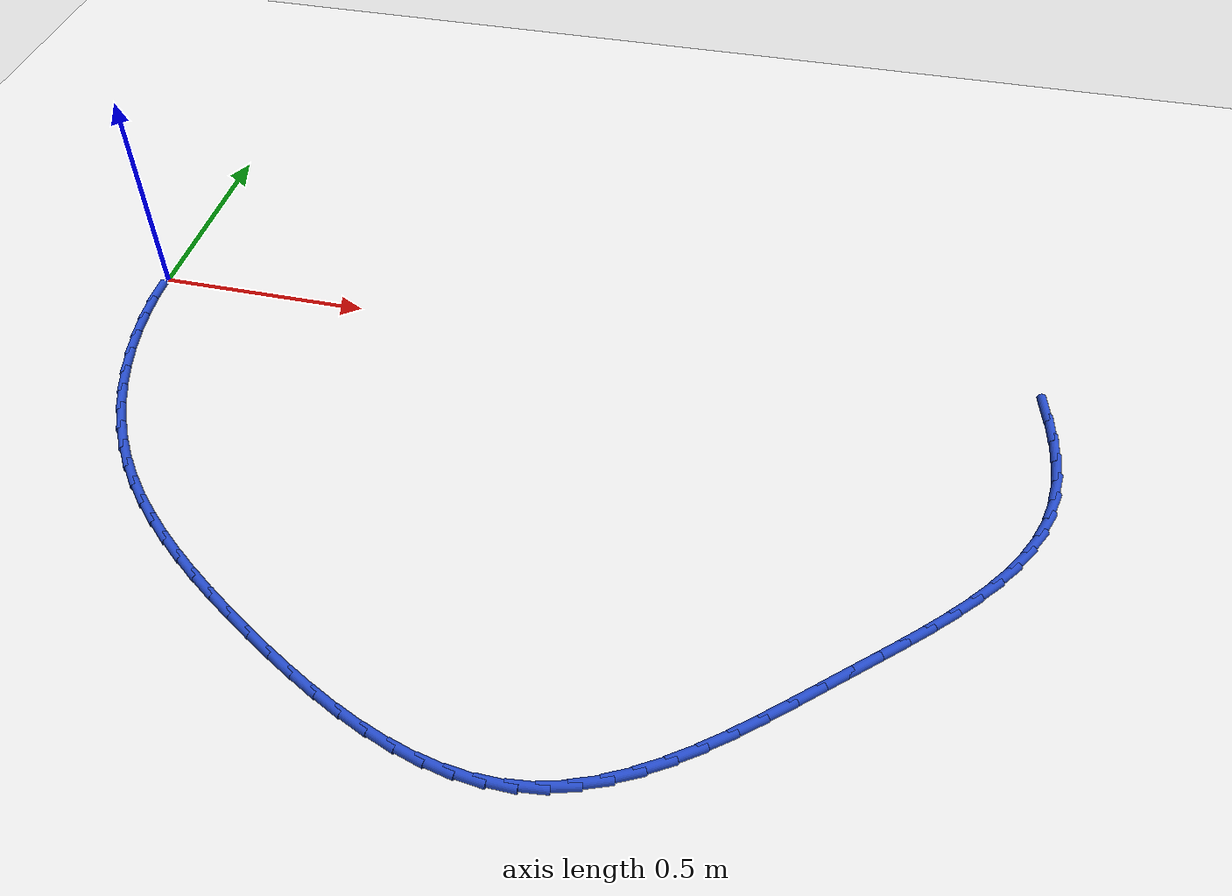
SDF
<sdf version="1.6">
 <world name="default">
  <model name="ground_plane">
   <static>1</static>
   <link name="link">
    <collision name="collision">
     <geometry><plane><normal>0 0 1</normal><size>100 100</size></plane></geometry>
     <surface><friction><ode><mu>100</mu><mu2>50</mu2></ode></friction></surface>
    </collision>
    <visual name="visual">
     <cast_shadows>0</cast_shadows>
     <geometry><plane><normal>0 0 1</normal><size>100 100</size></plane></geometry>
     <material>
      <script><uri>file://media/materials/scripts/gazebo.material</uri><name>Gazebo/WhiteGlow</name></script>
     </material>
    </visual>
   </link>
  </model>
  <model name="line">
   <link name="link_54">
    <pose>2.0862163492933608 -0.0034234239656072175 0.01 0 1.57 -1.4145855489516896</pose>
    <collision name="collision">
     <geometry><cylinder><radius>0.01</radius><length>0.08</length></cylinder></geometry>
    </collision>
    <visual name="visual">
     <material>
      <script><name>Gazebo/Blue</name><uri>file://media/materials/scripts/gazebo.material</uri></script>
     </material>
     <geometry><cylinder><radius>0.01</radius><length>0.08</length></cylinder></geometry>
    </visual>
   </link>
   <link name="link_55">
    <pose>2.095542316240016 -0.06263820138660511 0.01 0 1.57 -1.4789015656875089</pose>
    <collision name="collision">
     <geometry><cylinder><radius>0.01</radius><length>0.08</length></cylinder></geometry>
    </collision>
    <visual name="visual">
     <material>
      <script><name>Gazebo/Blue</name><uri>file://media/materials/scripts/gazebo.material</uri></script>
     </material>
     <geometry><cylinder><radius>0.01</radius><length>0.08</length></cylinder></geometry>
    </visual>
   </link>
   <link name="link_56">
    <pose>2.1009105108419246 -0.12089043673874189 0.01 0 1.57 -1.5553913041389502</pose>
    <collision name="collision">
     <geometry><cylinder><radius>0.01</radius><length>0.08</length></cylinder></geometry>
    </collision>
    <visual name="visual">
     <material>
      <script><name>Gazebo/Blue</name><uri>file://media/materials/scripts/gazebo.material</uri></script>
     </material>
     <geometry><cylinder><radius>0.01</radius><length>0.08</length></cylinder></geometry>
    </visual>
   </link>
   <link name="link_57">
    <pose>2.101789240608751 -0.17792769487936694 0.01 0 1.57 1.4963894253005463</pose>
    <collision name="collision">
     <geometry><cylinder><radius>0.01</radius><length>0.08</length></cylinder></geometry>
    </collision>
    <visual name="visual">
     <material>
      <script><name>Gazebo/Blue</name><uri>file://media/materials/scripts/gazebo.material</uri></script>
     </material>
     <geometry><cylinder><radius>0.01</radius><length>0.08</length></cylinder></geometry>
    </visual>
   </link>
   <link name="link_58">
    <pose>2.0976468130501598 -0.23349754066582734 0.01 0 1.57 1.3926624194813204</pose>
    <collision name="collision">
     <geometry><cylinder><radius>0.01</radius><length>0.08</length></cylinder></geometry>
    </collision>
    <visual name="visual">
     <material>
      <script><name>Gazebo/Blue</name><uri>file://media/materials/scripts/gazebo.material</uri></script>
     </material>
     <geometry><cylinder><radius>0.01</radius><length>0.08</length></cylinder></geometry>
    </visual>
   </link>
   <link name="link_59">
    <pose>2.087951535675815 -0.2873475389554728 0.01 0 1.57 1.2758113717162318</pose>
    <collision name="collision">
     <geometry><cylinder><radius>0.01</radius><length>0.08</length></cylinder></geometry>
    </collision>
    <visual name="visual">
     <material>
      <script><name>Gazebo/Blue</name><uri>file://media/materials/scripts/gazebo.material</uri></script>
     </material>
     <geometry><cylinder><radius>0.01</radius><length>0.08</length></cylinder></geometry>
    </visual>
   </link>
   <link name="link_60">
    <pose>2.0721865844523926 -0.33923156836323454 0.01 0 1.57 1.1580203221296244</pose>
    <collision name="collision">
     <geometry><cylinder><radius>0.01</radius><length>0.08</length></cylinder></geometry>
    </collision>
    <visual name="visual">
     <material>
      <script><name>Gazebo/Blue</name><uri>file://media/materials/scripts/gazebo.material</uri></script>
     </material>
     <geometry><cylinder><radius>0.01</radius><length>0.08</length></cylinder></geometry>
    </visual>
   </link>
   <link name="link_61">
    <pose>2.0503396512645615 -0.38911774568636764 0.01 0 1.57 1.0543256534862466</pose>
    <collision name="collision">
     <geometry><cylinder><radius>0.01</radius><length>0.08</length></cylinder></geometry>
    </collision>
    <visual name="visual">
     <material>
      <script><name>Gazebo/Blue</name><uri>file://media/materials/scripts/gazebo.material</uri></script>
     </material>
     <geometry><cylinder><radius>0.01</radius><length>0.08</length></cylinder></geometry>
    </visual>
   </link>
   <link name="link_62">
    <pose>2.023014206020356 -0.437235672364595 0.01 0 1.57 0.9666326495447133</pose>
    <collision name="collision">
     <geometry><cylinder><radius>0.01</radius><length>0.08</length></cylinder></geometry>
    </collision>
    <visual name="visual">
     <material>
      <script><name>Gazebo/Blue</name><uri>file://media/materials/scripts/gazebo.material</uri></script>
     </material>
     <geometry><cylinder><radius>0.01</radius><length>0.08</length></cylinder></geometry>
    </visual>
   </link>
   <link name="link_63">
    <pose>1.9908511169122924 -0.4838308306854094 0.01 0 1.57 0.8946365844398118</pose>
    <collision name="collision">
     <geometry><cylinder><radius>0.01</radius><length>0.08</length></cylinder></geometry>
    </collision>
    <visual name="visual">
     <material>
      <script><name>Gazebo/Blue</name><uri>file://media/materials/scripts/gazebo.material</uri></script>
     </material>
     <geometry><cylinder><radius>0.01</radius><length>0.08</length></cylinder></geometry>
    </visual>
   </link>
   <link name="link_64">
    <pose>1.954491252132888 -0.5291487029363013 0.01 0 1.57 0.837254252875471</pose>
    <collision name="collision">
     <geometry><cylinder><radius>0.01</radius><length>0.08</length></cylinder></geometry>
    </collision>
    <visual name="visual">
     <material>
      <script><name>Gazebo/Blue</name><uri>file://media/materials/scripts/gazebo.material</uri></script>
     </material>
     <geometry><cylinder><radius>0.01</radius><length>0.08</length></cylinder></geometry>
    </visual>
   </link>
   <link name="link_65">
    <pose>1.9145754798746613 -0.573434771404763 0.01 0 1.57 0.7931465441952978</pose>
    <collision name="collision">
     <geometry><cylinder><radius>0.01</radius><length>0.08</length></cylinder></geometry>
    </collision>
    <visual name="visual">
     <material>
      <script><name>Gazebo/Blue</name><uri>file://media/materials/scripts/gazebo.material</uri></script>
     </material>
     <geometry><cylinder><radius>0.01</radius><length>0.08</length></cylinder></geometry>
    </visual>
   </link>
   <link name="link_66">
    <pose>1.871744668330129 -0.6169345183782867 0.01 0 1.57 0.7610334642987012</pose>
    <collision name="collision">
     <geometry><cylinder><radius>0.01</radius><length>0.08</length></cylinder></geometry>
    </collision>
    <visual name="visual">
     <material>
      <script><name>Gazebo/Blue</name><uri>file://media/materials/scripts/gazebo.material</uri></script>
     </material>
     <geometry><cylinder><radius>0.01</radius><length>0.08</length></cylinder></geometry>
    </visual>
   </link>
   <link name="link_67">
    <pose>1.82663968569181 -0.6598934261443632 0.01 0 1.57 0.7398519325280659</pose>
    <collision name="collision">
     <geometry><cylinder><radius>0.01</radius><length>0.08</length></cylinder></geometry>
    </collision>
    <visual name="visual">
     <material>
      <script><name>Gazebo/Blue</name><uri>file://media/materials/scripts/gazebo.material</uri></script>
     </material>
     <geometry><cylinder><radius>0.01</radius><length>0.08</length></cylinder></geometry>
    </visual>
   </link>
   <link name="link_68">
    <pose>1.7799014001522195 -0.7025569769904851 0.01 0 1.57 0.72881930628748</pose>
    <collision name="collision">
     <geometry><cylinder><radius>0.01</radius><length>0.08</length></cylinder></geometry>
    </collision>
    <visual name="visual">
     <material>
      <script><name>Gazebo/Blue</name><uri>file://media/materials/scripts/gazebo.material</uri></script>
     </material>
     <geometry><cylinder><radius>0.01</radius><length>0.08</length></cylinder></geometry>
    </visual>
   </link>
   <link name="link_69">
    <pose>1.7321706799038785 -0.7451706532041433 0.01 0 1.57 0.727410532727351</pose>
    <collision name="collision">
     <geometry><cylinder><radius>0.01</radius><length>0.08</length></cylinder></geometry>
    </collision>
    <visual name="visual">
     <material>
      <script><name>Gazebo/Blue</name><uri>file://media/materials/scripts/gazebo.material</uri></script>
     </material>
     <geometry><cylinder><radius>0.01</radius><length>0.08</length></cylinder></geometry>
    </visual>
   </link>
   <link name="link_70">
    <pose>1.6840868543654208 -0.7879779995418241 0.01 0 1.57 0.7296685091486849</pose>
    <collision name="collision">
     <geometry><cylinder><radius>0.01</radius><length>0.08</length></cylinder></geometry>
    </collision>
    <visual name="visual">
     <material>
      <script><name>Gazebo/Blue</name><uri>file://media/materials/scripts/gazebo.material</uri></script>
     </material>
     <geometry><cylinder><radius>0.01</radius><length>0.08</length></cylinder></geometry>
    </visual>
   </link>
   <link name="link_71">
    <pose>1.6360579158123425 -0.8309312750205545 0.01 0 1.57 0.7237080216586759</pose>
    <collision name="collision">
     <geometry><cylinder><radius>0.01</radius><length>0.08</length></cylinder></geometry>
    </collision>
    <visual name="visual">
     <material>
      <script><name>Gazebo/Blue</name><uri>file://media/materials/scripts/gazebo.material</uri></script>
     </material>
     <geometry><cylinder><radius>0.01</radius><length>0.08</length></cylinder></geometry>
    </visual>
   </link>
   <link name="link_72">
    <pose>1.5880159686412145 -0.8733835294217532 0.01 0 1.57 0.7078139228827866</pose>
    <collision name="collision">
     <geometry><cylinder><radius>0.01</radius><length>0.08</length></cylinder></geometry>
    </collision>
    <visual name="visual">
     <material>
      <script><name>Gazebo/Blue</name><uri>file://media/materials/scripts/gazebo.material</uri></script>
     </material>
     <geometry><cylinder><radius>0.01</radius><length>0.08</length></cylinder></geometry>
    </visual>
   </link>
   <link name="link_73">
    <pose>1.5398345363520156 -0.9146140510047979 0.01 0 1.57 0.6813780021480593</pose>
    <collision name="collision">
     <geometry><cylinder><radius>0.01</radius><length>0.08</length></cylinder></geometry>
    </collision>
    <visual name="visual">
     <material>
      <script><name>Gazebo/Blue</name><uri>file://media/materials/scripts/gazebo.material</uri></script>
     </material>
     <geometry><cylinder><radius>0.01</radius><length>0.08</length></cylinder></geometry>
    </visual>
   </link>
   <link name="link_74">
    <pose>1.4913871424447247 -0.9539021280290689 0.01 0 1.57 0.6434361973783613</pose>
    <collision name="collision">
     <geometry><cylinder><radius>0.01</radius><length>0.08</length></cylinder></geometry>
    </collision>
    <visual name="visual">
     <material>
      <script><name>Gazebo/Blue</name><uri>file://media/materials/scripts/gazebo.material</uri></script>
     </material>
     <geometry><cylinder><radius>0.01</radius><length>0.08</length></cylinder></geometry>
    </visual>
   </link>
   <link name="link_75">
    <pose>1.442547310419321 -0.9905270487539442 0.01 0 1.57 0.5926897081279802</pose>
    <collision name="collision">
     <geometry><cylinder><radius>0.01</radius><length>0.08</length></cylinder></geometry>
    </collision>
    <visual name="visual">
     <material>
      <script><name>Gazebo/Blue</name><uri>file://media/materials/scripts/gazebo.material</uri></script>
     </material>
     <geometry><cylinder><radius>0.01</radius><length>0.08</length></cylinder></geometry>
    </visual>
   </link>
   <link name="link_76">
    <pose>1.3931885637757817 -1.0237681014388036 0.01 0 1.57 0.5275877730100548</pose>
    <collision name="collision">
     <geometry><cylinder><radius>0.01</radius><length>0.08</length></cylinder></geometry>
    </collision>
    <visual name="visual">
     <material>
      <script><name>Gazebo/Blue</name><uri>file://media/materials/scripts/gazebo.material</uri></script>
     </material>
     <geometry><cylinder><radius>0.01</radius><length>0.08</length></cylinder></geometry>
    </visual>
   </link>
   <link name="link_77">
    <pose>1.343184426014087 -1.0529045743430254 0.01 0 1.57 0.44653829825648184</pose>
    <collision name="collision">
     <geometry><cylinder><radius>0.01</radius><length>0.08</length></cylinder></geometry>
    </collision>
    <visual name="visual">
     <material>
      <script><name>Gazebo/Blue</name><uri>file://media/materials/scripts/gazebo.material</uri></script>
     </material>
     <geometry><cylinder><radius>0.01</radius><length>0.08</length></cylinder></geometry>
    </visual>
   </link>
   <link name="link_78">
    <pose>1.2924084206342146 -1.0772157557259896 0.01 0 1.57 0.34833518697499716</pose>
    <collision name="collision">
     <geometry><cylinder><radius>0.01</radius><length>0.08</length></cylinder></geometry>
    </collision>
    <visual name="visual">
     <material>
      <script><name>Gazebo/Blue</name><uri>file://media/materials/scripts/gazebo.material</uri></script>
     </material>
     <geometry><cylinder><radius>0.01</radius><length>0.08</length></cylinder></geometry>
    </visual>
   </link>
   <link name="link_79">
    <pose>1.2407340711361436 -1.0959809338470738 0.01 0 1.57 0.23286382155602467</pose>
    <collision name="collision">
     <geometry><cylinder><radius>0.01</radius><length>0.08</length></cylinder></geometry>
    </collision>
    <visual name="visual">
     <material>
      <script><name>Gazebo/Blue</name><uri>file://media/materials/scripts/gazebo.material</uri></script>
     </material>
     <geometry><cylinder><radius>0.01</radius><length>0.08</length></cylinder></geometry>
    </visual>
   </link>
   <link name="link_80">
    <pose>1.1880349010198523 -1.1084793969656583 0.01 0 1.57 0.10332286645283265</pose>
    <collision name="collision">
     <geometry><cylinder><radius>0.01</radius><length>0.08</length></cylinder></geometry>
    </collision>
    <visual name="visual">
     <material>
      <script><name>Gazebo/Blue</name><uri>file://media/materials/scripts/gazebo.material</uri></script>
     </material>
     <geometry><cylinder><radius>0.01</radius><length>0.08</length></cylinder></geometry>
    </visual>
   </link>
   <link name="link_81">
    <pose>1.1342028291905297 -1.1140613587099848 0.01 0 1.57 -0.021669646816166895</pose>
    <collision name="collision">
     <geometry><cylinder><radius>0.01</radius><length>0.08</length></cylinder></geometry>
    </collision>
    <visual name="visual">
     <material>
      <script><name>Gazebo/Blue</name><uri>file://media/materials/scripts/gazebo.material</uri></script>
     </material>
     <geometry><cylinder><radius>0.01</radius><length>0.08</length></cylinder></geometry>
    </visual>
   </link>
   <link name="link_82">
    <pose>1.07933601870819 -1.112872228170976 0.01 0 1.57 -0.13064839411802986</pose>
    <collision name="collision">
     <geometry><cylinder><radius>0.01</radius><length>0.08</length></cylinder></geometry>
    </collision>
    <visual name="visual">
     <material>
      <script><name>Gazebo/Blue</name><uri>file://media/materials/scripts/gazebo.material</uri></script>
     </material>
     <geometry><cylinder><radius>0.01</radius><length>0.08</length></cylinder></geometry>
    </visual>
   </link>
   <link name="link_83">
    <pose>1.0236621702046127 -1.1055568598148748 0.01 0 1.57 -0.22355534168402486</pose>
    <collision name="collision">
     <geometry><cylinder><radius>0.01</radius><length>0.08</length></cylinder></geometry>
    </collision>
    <visual name="visual">
     <material>
      <script><name>Gazebo/Blue</name><uri>file://media/materials/scripts/gazebo.material</uri></script>
     </material>
     <geometry><cylinder><radius>0.01</radius><length>0.08</length></cylinder></geometry>
    </visual>
   </link>
   <link name="link_84">
    <pose>0.9674109903629982 -1.0927678426446308 0.01 0 1.57 -0.30164417658088444</pose>
    <collision name="collision">
     <geometry><cylinder><radius>0.01</radius><length>0.08</length></cylinder></geometry>
    </collision>
    <visual name="visual">
     <material>
      <script><name>Gazebo/Blue</name><uri>file://media/materials/scripts/gazebo.material</uri></script>
     </material>
     <geometry><cylinder><radius>0.01</radius><length>0.08</length></cylinder></geometry>
    </visual>
   </link>
   <link name="link_85">
    <pose>0.9108121858665438 -1.0751577656631934 0.01 0 1.57 -0.3666272898669903</pose>
    <collision name="collision">
     <geometry><cylinder><radius>0.01</radius><length>0.08</length></cylinder></geometry>
    </collision>
    <visual name="visual">
     <material>
      <script><name>Gazebo/Blue</name><uri>file://media/materials/scripts/gazebo.material</uri></script>
     </material>
     <geometry><cylinder><radius>0.01</radius><length>0.08</length></cylinder></geometry>
    </visual>
   </link>
   <link name="link_86">
    <pose>0.8540954633984507 -1.0533792178735142 0.01 0 1.57 -0.42023888100111406</pose>
    <collision name="collision">
     <geometry><cylinder><radius>0.01</radius><length>0.08</length></cylinder></geometry>
    </collision>
    <visual name="visual">
     <material>
      <script><name>Gazebo/Blue</name><uri>file://media/materials/scripts/gazebo.material</uri></script>
     </material>
     <geometry><cylinder><radius>0.01</radius><length>0.08</length></cylinder></geometry>
    </visual>
   </link>
   <link name="link_87">
    <pose>0.7974905296419155 -1.0280847882785409 0.01 0 1.57 -0.4640172758357862</pose>
    <collision name="collision">
     <geometry><cylinder><radius>0.01</radius><length>0.08</length></cylinder></geometry>
    </collision>
    <visual name="visual">
     <material>
      <script><name>Gazebo/Blue</name><uri>file://media/materials/scripts/gazebo.material</uri></script>
     </material>
     <geometry><cylinder><radius>0.01</radius><length>0.08</length></cylinder></geometry>
    </visual>
   </link>
   <link name="link_88">
    <pose>0.7412270912801389 -0.9999270658812244 0.01 0 1.57 -0.4992199899860393</pose>
    <collision name="collision">
     <geometry><cylinder><radius>0.01</radius><length>0.08</length></cylinder></geometry>
    </collision>
    <visual name="visual">
     <material>
      <script><name>Gazebo/Blue</name><uri>file://media/materials/scripts/gazebo.material</uri></script>
     </material>
     <geometry><cylinder><radius>0.01</radius><length>0.08</length></cylinder></geometry>
    </visual>
   </link>
   <link name="link_89">
    <pose>0.6855348549963192 -0.969558639684514 0.01 0 1.57 -0.5268039617274481</pose>
    <collision name="collision">
     <geometry><cylinder><radius>0.01</radius><length>0.08</length></cylinder></geometry>
    </collision>
    <visual name="visual">
     <material>
      <script><name>Gazebo/Blue</name><uri>file://media/materials/scripts/gazebo.material</uri></script>
     </material>
     <geometry><cylinder><radius>0.01</radius><length>0.08</length></cylinder></geometry>
    </visual>
   </link>
   <link name="link_90">
    <pose>0.6306435274736559 -0.9376320986913602 0.01 0 1.57 -0.5474354374624579</pose>
    <collision name="collision">
     <geometry><cylinder><radius>0.01</radius><length>0.08</length></cylinder></geometry>
    </collision>
    <visual name="visual">
     <material>
      <script><name>Gazebo/Blue</name><uri>file://media/materials/scripts/gazebo.material</uri></script>
     </material>
     <geometry><cylinder><radius>0.01</radius><length>0.08</length></cylinder></geometry>
    </visual>
   </link>
   <link name="link_91">
    <pose>0.5767828013242992 -0.9047995604461356 0.01 0 1.57 -0.5644850624125647</pose>
    <collision name="collision">
     <geometry><cylinder><radius>0.01</radius><length>0.08</length></cylinder></geometry>
    </collision>
    <visual name="visual">
     <material>
      <script><name>Gazebo/Blue</name><uri>file://media/materials/scripts/gazebo.material</uri></script>
     </material>
     <geometry><cylinder><radius>0.01</radius><length>0.08</length></cylinder></geometry>
    </visual>
   </link>
   <link name="link_92">
    <pose>0.5241756469696512 -0.8714879116172577 0.01 0 1.57 -0.5859761320997677</pose>
    <collision name="collision">
     <geometry><cylinder><radius>0.01</radius><length>0.08</length></cylinder></geometry>
    </collision>
    <visual name="visual">
     <material>
      <script><name>Gazebo/Blue</name><uri>file://media/materials/scripts/gazebo.material</uri></script>
     </material>
     <geometry><cylinder><radius>0.01</radius><length>0.08</length></cylinder></geometry>
    </visual>
   </link>
   <link name="link_93">
    <pose>0.4730275650991539 -0.8375387054337828 0.01 0 1.57 -0.6134150816907153</pose>
    <collision name="collision">
     <geometry><cylinder><radius>0.01</radius><length>0.08</length></cylinder></geometry>
    </collision>
    <visual name="visual">
     <material>
      <script><name>Gazebo/Blue</name><uri>file://media/materials/scripts/gazebo.material</uri></script>
     </material>
     <geometry><cylinder><radius>0.01</radius><length>0.08</length></cylinder></geometry>
    </visual>
   </link>
   <link name="link_94">
    <pose>0.4235412550127591 -0.8026996329550163 0.01 0 1.57 -0.6470512394733215</pose>
    <collision name="collision">
     <geometry><cylinder><radius>0.01</radius><length>0.08</length></cylinder></geometry>
    </collision>
    <visual name="visual">
     <material>
      <script><name>Gazebo/Blue</name><uri>file://media/materials/scripts/gazebo.material</uri></script>
     </material>
     <geometry><cylinder><radius>0.01</radius><length>0.08</length></cylinder></geometry>
    </visual>
   </link>
   <link name="link_95">
    <pose>0.37591941601041656 -0.7667183852402627 0.01 0 1.57 -0.6870919655638545</pose>
    <collision name="collision">
     <geometry><cylinder><radius>0.01</radius><length>0.08</length></cylinder></geometry>
    </collision>
    <visual name="visual">
     <material>
      <script><name>Gazebo/Blue</name><uri>file://media/materials/scripts/gazebo.material</uri></script>
     </material>
     <geometry><cylinder><radius>0.01</radius><length>0.08</length></cylinder></geometry>
    </visual>
   </link>
   <link name="link_96">
    <pose>0.33036474739207816 -0.7293426533488268 0.01 0 1.57 -0.7336595108395739</pose>
    <collision name="collision">
     <geometry><cylinder><radius>0.01</radius><length>0.08</length></cylinder></geometry>
    </collision>
    <visual name="visual">
     <material>
      <script><name>Gazebo/Blue</name><uri>file://media/materials/scripts/gazebo.material</uri></script>
     </material>
     <geometry><cylinder><radius>0.01</radius><length>0.08</length></cylinder></geometry>
    </visual>
   </link>
   <link name="link_97">
    <pose>0.2870799484576939 -0.6903201283400131 0.01 0 1.57 -0.7867366179262438</pose>
    <collision name="collision">
     <geometry><cylinder><radius>0.01</radius><length>0.08</length></cylinder></geometry>
    </collision>
    <visual name="visual">
     <material>
      <script><name>Gazebo/Blue</name><uri>file://media/materials/scripts/gazebo.material</uri></script>
     </material>
     <geometry><cylinder><radius>0.01</radius><length>0.08</length></cylinder></geometry>
    </visual>
   </link>
   <link name="link_98">
    <pose>0.2462677185072142 -0.6493985012731257 0.01 0 1.57 -0.8461051111755625</pose>
    <collision name="collision">
     <geometry><cylinder><radius>0.01</radius><length>0.08</length></cylinder></geometry>
    </collision>
    <visual name="visual">
     <material>
      <script><name>Gazebo/Blue</name><uri>file://media/materials/scripts/gazebo.material</uri></script>
     </material>
     <geometry><cylinder><radius>0.01</radius><length>0.08</length></cylinder></geometry>
    </visual>
   </link>
   <link name="link_99">
    <pose>0.20813075684059087 -0.6063254632074704 0.01 0 1.57 -0.9112869983685284</pose>
    <collision name="collision">
     <geometry><cylinder><radius>0.01</radius><length>0.08</length></cylinder></geometry>
    </collision>
    <visual name="visual">
     <material>
      <script><name>Gazebo/Blue</name><uri>file://media/materials/scripts/gazebo.material</uri></script>
     </material>
     <geometry><cylinder><radius>0.01</radius><length>0.08</length></cylinder></geometry>
    </visual>
   </link>
   <link name="link_100">
    <pose>0.17287176275777355 -0.5608487052023508 0.01 0 1.57 -0.9812636381972781</pose>
    <collision name="collision">
     <geometry><cylinder><radius>0.01</radius><length>0.08</length></cylinder></geometry>
    </collision>
    <visual name="visual">
     <material>
      <script><name>Gazebo/Blue</name><uri>file://media/materials/scripts/gazebo.material</uri></script>
     </material>
     <geometry><cylinder><radius>0.01</radius><length>0.08</length></cylinder></geometry>
    </visual>
   </link>
   <link name="link_101">
    <pose>0.14068846548081065 -0.5127334332809079 0.01 0 1.57 -1.0513024169823075</pose>
    <collision name="collision">
     <geometry><cylinder><radius>0.01</radius><length>0.08</length></cylinder></geometry>
    </collision>
    <visual name="visual">
     <material>
      <script><name>Gazebo/Blue</name><uri>file://media/materials/scripts/gazebo.material</uri></script>
     </material>
     <geometry><cylinder><radius>0.01</radius><length>0.08</length></cylinder></geometry>
    </visual>
   </link>
   <link name="link_102">
    <pose>0.11169568982463754 -0.4620370154244322 0.01 0 1.57 -1.1182860409158246</pose>
    <collision name="collision">
     <geometry><cylinder><radius>0.01</radius><length>0.08</length></cylinder></geometry>
    </collision>
    <visual name="visual">
     <material>
      <script><name>Gazebo/Blue</name><uri>file://media/materials/scripts/gazebo.material</uri></script>
     </material>
     <geometry><cylinder><radius>0.01</radius><length>0.08</length></cylinder></geometry>
    </visual>
   </link>
   <link name="link_103">
    <pose>0.0859397714123184 -0.409058181166718 0.01 0 1.57 -1.182585589931627</pose>
    <collision name="collision">
     <geometry><cylinder><radius>0.01</radius><length>0.08</length></cylinder></geometry>
    </collision>
    <visual name="visual">
     <material>
      <script><name>Gazebo/Blue</name><uri>file://media/materials/scripts/gazebo.material</uri></script>
     </material>
     <geometry><cylinder><radius>0.01</radius><length>0.08</length></cylinder></geometry>
    </visual>
   </link>
   <link name="link_104">
    <pose>0.06346499184678142 -0.3541028985776685 0.01 0 1.57 -1.2446955428415059</pose>
    <collision name="collision">
     <geometry><cylinder><radius>0.01</radius><length>0.08</length></cylinder></geometry>
    </collision>
    <visual name="visual">
     <material>
      <script><name>Gazebo/Blue</name><uri>file://media/materials/scripts/gazebo.material</uri></script>
     </material>
     <geometry><cylinder><radius>0.01</radius><length>0.08</length></cylinder></geometry>
    </visual>
   </link>
   <link name="link_105">
    <pose>0.044315632730955797 -0.29747713572718953 0.01 0 1.57 -1.3051201371912207</pose>
    <collision name="collision">
     <geometry><cylinder><radius>0.01</radius><length>0.08</length></cylinder></geometry>
    </collision>
    <visual name="visual">
     <material>
      <script><name>Gazebo/Blue</name><uri>file://media/materials/scripts/gazebo.material</uri></script>
     </material>
     <geometry><cylinder><radius>0.01</radius><length>0.08</length></cylinder></geometry>
    </visual>
   </link>
   <link name="link_106">
    <pose>0.02853597566776987 -0.23948686068518424 0.01 0 1.57 -1.3643650583699978</pose>
    <collision name="collision">
     <geometry><cylinder><radius>0.01</radius><length>0.08</length></cylinder></geometry>
    </collision>
    <visual name="visual">
     <material>
      <script><name>Gazebo/Blue</name><uri>file://media/materials/scripts/gazebo.material</uri></script>
     </material>
     <geometry><cylinder><radius>0.01</radius><length>0.08</length></cylinder></geometry>
    </visual>
   </link>
   <link name="link_107">
    <pose>0.01617030226015271 -0.18043804152155873 0.01 0 1.57 -1.4229335900540174</pose>
    <collision name="collision">
     <geometry><cylinder><radius>0.01</radius><length>0.08</length></cylinder></geometry>
    </collision>
    <visual name="visual">
     <material>
      <script><name>Gazebo/Blue</name><uri>file://media/materials/scripts/gazebo.material</uri></script>
     </material>
     <geometry><cylinder><radius>0.01</radius><length>0.08</length></cylinder></geometry>
    </visual>
   </link>
   <link name="link_108">
    <pose>0.007262894111032783 -0.120636646306216 0.01 0 1.57 -1.4813256171697664</pose>
    <collision name="collision">
     <geometry><cylinder><radius>0.01</radius><length>0.08</length></cylinder></geometry>
    </collision>
    <visual name="visual">
     <material>
      <script><name>Gazebo/Blue</name><uri>file://media/materials/scripts/gazebo.material</uri></script>
     </material>
     <geometry><cylinder><radius>0.01</radius><length>0.08</length></cylinder></geometry>
    </visual>
   </link>
   <link name="link_109">
    <pose>0.0018580328233390297 -0.06038864310906211 0.01 0 1.57 -1.5400381121853883</pose>
    <collision name="collision">
     <geometry><cylinder><radius>0.01</radius><length>0.08</length></cylinder></geometry>
    </collision>
    <visual name="visual">
     <material>
      <script><name>Gazebo/Blue</name><uri>file://media/materials/scripts/gazebo.material</uri></script>
     </material>
     <geometry><cylinder><radius>0.01</radius><length>0.08</length></cylinder></geometry>
    </visual>
   </link>
  </model>
 </world>
</sdf>
